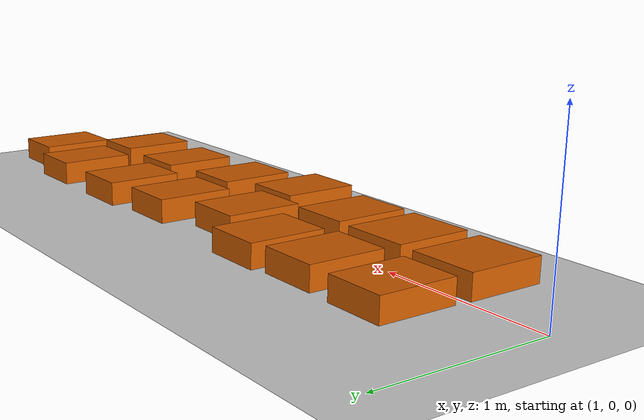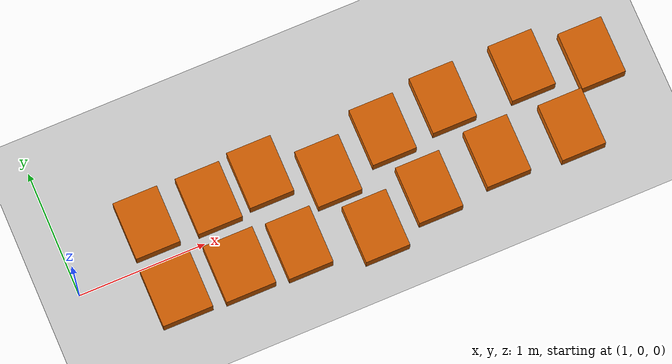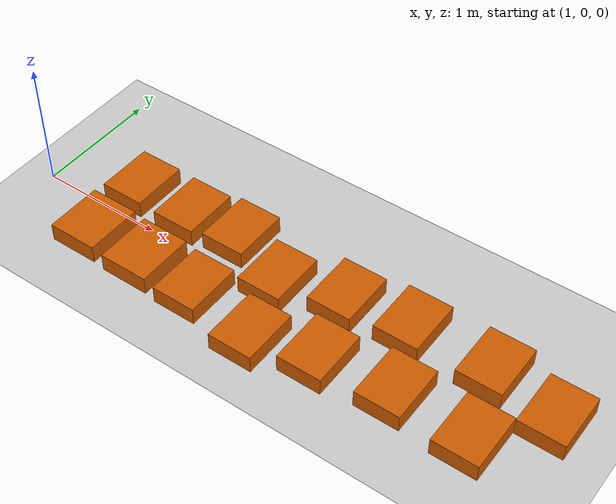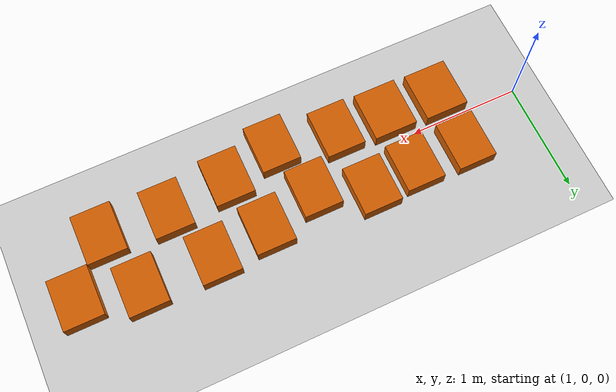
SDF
<sdf version="1.7">
 <world name="default">
  <model name="ground_plane">
   <static>1</static>
   <link name="link">
    <collision name="collision">
     <geometry><plane><normal>0 0 1</normal><size>100 100</size></plane></geometry>
     <surface><friction><ode><mu>100</mu><mu2>50</mu2></ode></friction></surface>
    </collision>
    <visual name="visual">
     <cast_shadows>0</cast_shadows>
     <geometry><plane><normal>0 0 1</normal><size>100 100</size></plane></geometry>
     <material>
      <script><uri>file://media/materials/scripts/gazebo.material</uri><name>Gazebo/Grey</name></script>
     </material>
    </visual>
   </link>
  </model>
  <model name="unit_box_clone">
   <link name="link">
    <inertial>
     <mass>1</mass>
     <inertia>
      <ixx>0.166667</ixx>
      <ixy>0</ixy>
      <ixz>0</ixz>
      <iyy>0.166667</iyy>
      <iyz>0</iyz>
      <izz>0.166667</izz>
     </inertia>
    </inertial>
    <visual name="visual">
     <geometry><box><size>0.394525 0.456132 0.142491</size></box></geometry>
     <material>
      <script><name>Gazebo/Grey</name><uri>file://media/materials/scripts/gazebo.material</uri></script>
      <shader type="pixel"><normal_map>__default__</normal_map></shader>
      <ambient>0.808 0.361 0 1</ambient>
      <diffuse>0.808 0.361 0 1</diffuse>
      <specular>0.808 0.361 0 1</specular>
      <emissive>0.808 0.361 0 1</emissive>
     </material>
    </visual>
    <collision name="collision">
     <geometry><box><size>0.394525 0.456132 0.142491</size></box></geometry>
     <surface>
      <friction>
       <ode><mu>1</mu><mu2>1</mu2><fdir1>0 0 0</fdir1><slip1>0</slip1><slip2>0</slip2></ode>
       <torsional>
        <coefficient>1</coefficient>
        <patch_radius>0</patch_radius>
        <surface_radius>0</surface_radius>
        <use_patch_radius>1</use_patch_radius>
        <ode><slip>0</slip></ode>
       </torsional>
      </friction>
      <bounce><restitution_coefficient>0</restitution_coefficient><threshold>1e+06</threshold></bounce>
      <contact>
       <collide_without_contact>0</collide_without_contact>
       <collide_without_contact_bitmask>1</collide_without_contact_bitmask>
       <collide_bitmask>1</collide_bitmask>
       <ode>
        <soft_cfm>0</soft_cfm>
        <soft_erp>0.2</soft_erp>
        <kp>1e+13</kp>
        <kd>1</kd>
        <max_vel>0.01</max_vel>
        <min_depth>0</min_depth>
       </ode>
       <bullet>
        <split_impulse>1</split_impulse>
        <split_impulse_penetration_threshold>-0.01</split_impulse_penetration_threshold>
        <soft_cfm>0</soft_cfm>
        <soft_erp>0.2</soft_erp>
        <kp>1e+13</kp>
        <kd>1</kd>
       </bullet>
      </contact>
     </surface>
    </collision>
   </link>
   <static>0</static>
   <pose>1.67126 -0.254686 0.071246 0 0 -4e-06</pose>
  </model>
  <model name="unit_box_clone_clone">
   <link name="link">
    <inertial>
     <mass>1</mass>
     <inertia>
      <ixx>0.166667</ixx>
      <ixy>0</ixy>
      <ixz>0</ixz>
      <iyy>0.166667</iyy>
      <iyz>0</iyz>
      <izz>0.166667</izz>
     </inertia>
    </inertial>
    <visual name="visual">
     <geometry><box><size>0.351248 0.456132 0.139463</size></box></geometry>
     <material>
      <script><name>Gazebo/Grey</name><uri>file://media/materials/scripts/gazebo.material</uri></script>
      <shader type="pixel"><normal_map>__default__</normal_map></shader>
      <ambient>0.808 0.361 0 1</ambient>
      <diffuse>0.808 0.361 0 1</diffuse>
      <specular>0.808 0.361 0 1</specular>
      <emissive>0.808 0.361 0 1</emissive>
     </material>
    </visual>
    <collision name="collision">
     <geometry><box><size>0.351248 0.456132 0.139463</size></box></geometry>
     <surface>
      <friction>
       <ode><mu>1</mu><mu2>1</mu2><fdir1>0 0 0</fdir1><slip1>0</slip1><slip2>0</slip2></ode>
       <torsional>
        <coefficient>1</coefficient>
        <patch_radius>0</patch_radius>
        <surface_radius>0</surface_radius>
        <use_patch_radius>1</use_patch_radius>
        <ode><slip>0</slip></ode>
       </torsional>
      </friction>
      <bounce><restitution_coefficient>0</restitution_coefficient><threshold>1e+06</threshold></bounce>
      <contact>
       <collide_without_contact>0</collide_without_contact>
       <collide_without_contact_bitmask>1</collide_without_contact_bitmask>
       <collide_bitmask>1</collide_bitmask>
       <ode>
        <soft_cfm>0</soft_cfm>
        <soft_erp>0.2</soft_erp>
        <kp>1e+13</kp>
        <kd>1</kd>
        <max_vel>0.01</max_vel>
        <min_depth>0</min_depth>
       </ode>
       <bullet>
        <split_impulse>1</split_impulse>
        <split_impulse_penetration_threshold>-0.01</split_impulse_penetration_threshold>
        <soft_cfm>0</soft_cfm>
        <soft_erp>0.2</soft_erp>
        <kp>1e+13</kp>
        <kd>1</kd>
       </bullet>
      </contact>
     </surface>
    </collision>
   </link>
   <static>0</static>
   <pose>1.65893 0.289361 0.069732 0 0 -4e-06</pose>
  </model>
  <model name="unit_box_clone_clone_0">
   <link name="link">
    <inertial>
     <mass>1</mass>
     <inertia>
      <ixx>0.166667</ixx>
      <ixy>0</ixy>
      <ixz>0</ixz>
      <iyy>0.166667</iyy>
      <iyz>0</iyz>
      <izz>0.166667</izz>
     </inertia>
    </inertial>
    <visual name="visual">
     <geometry><box><size>0.394525 0.456132 0.142491</size></box></geometry>
     <material>
      <script><name>Gazebo/Grey</name><uri>file://media/materials/scripts/gazebo.material</uri></script>
      <shader type="pixel"><normal_map>__default__</normal_map></shader>
      <ambient>0.808 0.361 0 1</ambient>
      <diffuse>0.808 0.361 0 1</diffuse>
      <specular>0.808 0.361 0 1</specular>
      <emissive>0.808 0.361 0 1</emissive>
     </material>
    </visual>
    <collision name="collision">
     <geometry><box><size>0.394525 0.456132 0.142491</size></box></geometry>
     <surface>
      <friction>
       <ode><mu>1</mu><mu2>1</mu2><fdir1>0 0 0</fdir1><slip1>0</slip1><slip2>0</slip2></ode>
       <torsional>
        <coefficient>1</coefficient>
        <patch_radius>0</patch_radius>
        <surface_radius>0</surface_radius>
        <use_patch_radius>1</use_patch_radius>
        <ode><slip>0</slip></ode>
       </torsional>
      </friction>
      <bounce><restitution_coefficient>0</restitution_coefficient><threshold>1e+06</threshold></bounce>
      <contact>
       <collide_without_contact>0</collide_without_contact>
       <collide_without_contact_bitmask>1</collide_without_contact_bitmask>
       <collide_bitmask>1</collide_bitmask>
       <ode>
        <soft_cfm>0</soft_cfm>
        <soft_erp>0.2</soft_erp>
        <kp>1e+13</kp>
        <kd>1</kd>
        <max_vel>0.01</max_vel>
        <min_depth>0</min_depth>
       </ode>
       <bullet>
        <split_impulse>1</split_impulse>
        <split_impulse_penetration_threshold>-0.01</split_impulse_penetration_threshold>
        <soft_cfm>0</soft_cfm>
        <soft_erp>0.2</soft_erp>
        <kp>1e+13</kp>
        <kd>1</kd>
       </bullet>
      </contact>
     </surface>
    </collision>
   </link>
   <static>0</static>
   <pose>2.1666 -0.269272 0.071245 0 0 -4e-06</pose>
  </model>
  <model name="unit_box_clone_clone_clone">
   <link name="link">
    <inertial>
     <mass>1</mass>
     <inertia>
      <ixx>0.166667</ixx>
      <ixy>0</ixy>
      <ixz>0</ixz>
      <iyy>0.166667</iyy>
      <iyz>0</iyz>
      <izz>0.166667</izz>
     </inertia>
    </inertial>
    <visual name="visual">
     <geometry><box><size>0.351248 0.456132 0.139463</size></box></geometry>
     <material>
      <script><name>Gazebo/Grey</name><uri>file://media/materials/scripts/gazebo.material</uri></script>
      <shader type="pixel"><normal_map>__default__</normal_map></shader>
      <ambient>0.808 0.361 0 1</ambient>
      <diffuse>0.808 0.361 0 1</diffuse>
      <specular>0.808 0.361 0 1</specular>
      <emissive>0.808 0.361 0 1</emissive>
     </material>
    </visual>
    <collision name="collision">
     <geometry><box><size>0.351248 0.456132 0.139463</size></box></geometry>
     <surface>
      <friction>
       <ode><mu>1</mu><mu2>1</mu2><fdir1>0 0 0</fdir1><slip1>0</slip1><slip2>0</slip2></ode>
       <torsional>
        <coefficient>1</coefficient>
        <patch_radius>0</patch_radius>
        <surface_radius>0</surface_radius>
        <use_patch_radius>1</use_patch_radius>
        <ode><slip>0</slip></ode>
       </torsional>
      </friction>
      <bounce><restitution_coefficient>0</restitution_coefficient><threshold>1e+06</threshold></bounce>
      <contact>
       <collide_without_contact>0</collide_without_contact>
       <collide_without_contact_bitmask>1</collide_without_contact_bitmask>
       <collide_bitmask>1</collide_bitmask>
       <ode>
        <soft_cfm>0</soft_cfm>
        <soft_erp>0.2</soft_erp>
        <kp>1e+13</kp>
        <kd>1</kd>
        <max_vel>0.01</max_vel>
        <min_depth>0</min_depth>
       </ode>
       <bullet>
        <split_impulse>1</split_impulse>
        <split_impulse_penetration_threshold>-0.01</split_impulse_penetration_threshold>
        <soft_cfm>0</soft_cfm>
        <soft_erp>0.2</soft_erp>
        <kp>1e+13</kp>
        <kd>1</kd>
       </bullet>
      </contact>
     </surface>
    </collision>
   </link>
   <static>0</static>
   <pose>2.15225 0.282957 0.069731 0 0 -4e-06</pose>
  </model>
  <model name="unit_box_clone_clone_clone_clone">
   <link name="link">
    <inertial>
     <mass>1</mass>
     <inertia>
      <ixx>0.166667</ixx>
      <ixy>0</ixy>
      <ixz>0</ixz>
      <iyy>0.166667</iyy>
      <iyz>0</iyz>
      <izz>0.166667</izz>
     </inertia>
    </inertial>
    <visual name="visual">
     <geometry><box><size>0.351248 0.456132 0.139463</size></box></geometry>
     <material>
      <script><name>Gazebo/Grey</name><uri>file://media/materials/scripts/gazebo.material</uri></script>
      <shader type="pixel"><normal_map>__default__</normal_map></shader>
      <ambient>0.808 0.361 0 1</ambient>
      <diffuse>0.808 0.361 0 1</diffuse>
      <specular>0.808 0.361 0 1</specular>
      <emissive>0.808 0.361 0 1</emissive>
     </material>
    </visual>
    <collision name="collision">
     <geometry><box><size>0.351248 0.456132 0.139463</size></box></geometry>
     <surface>
      <friction>
       <ode><mu>1</mu><mu2>1</mu2><fdir1>0 0 0</fdir1><slip1>0</slip1><slip2>0</slip2></ode>
       <torsional>
        <coefficient>1</coefficient>
        <patch_radius>0</patch_radius>
        <surface_radius>0</surface_radius>
        <use_patch_radius>1</use_patch_radius>
        <ode><slip>0</slip></ode>
       </torsional>
      </friction>
      <bounce><restitution_coefficient>0</restitution_coefficient><threshold>1e+06</threshold></bounce>
      <contact>
       <collide_without_contact>0</collide_without_contact>
       <collide_without_contact_bitmask>1</collide_without_contact_bitmask>
       <collide_bitmask>1</collide_bitmask>
       <ode>
        <soft_cfm>0</soft_cfm>
        <soft_erp>0.2</soft_erp>
        <kp>1e+13</kp>
        <kd>1</kd>
        <max_vel>0.01</max_vel>
        <min_depth>0</min_depth>
       </ode>
       <bullet>
        <split_impulse>1</split_impulse>
        <split_impulse_penetration_threshold>-0.01</split_impulse_penetration_threshold>
        <soft_cfm>0</soft_cfm>
        <soft_erp>0.2</soft_erp>
        <kp>1e+13</kp>
        <kd>1</kd>
       </bullet>
      </contact>
     </surface>
    </collision>
   </link>
   <static>0</static>
   <pose>2.57815 0.316885 0.069731 0 0 -4e-06</pose>
  </model>
  <model name="unit_box_clone_clone_clone_clone_0">
   <link name="link">
    <inertial>
     <mass>1</mass>
     <inertia>
      <ixx>0.166667</ixx>
      <ixy>0</ixy>
      <ixz>0</ixz>
      <iyy>0.166667</iyy>
      <iyz>0</iyz>
      <izz>0.166667</izz>
     </inertia>
    </inertial>
    <visual name="visual">
     <geometry><box><size>0.351248 0.456132 0.139463</size></box></geometry>
     <material>
      <script><name>Gazebo/Grey</name><uri>file://media/materials/scripts/gazebo.material</uri></script>
      <shader type="pixel"><normal_map>__default__</normal_map></shader>
      <ambient>0.808 0.361 0 1</ambient>
      <diffuse>0.808 0.361 0 1</diffuse>
      <specular>0.808 0.361 0 1</specular>
      <emissive>0.808 0.361 0 1</emissive>
     </material>
    </visual>
    <collision name="collision">
     <geometry><box><size>0.351248 0.456132 0.139463</size></box></geometry>
     <surface>
      <friction>
       <ode><mu>1</mu><mu2>1</mu2><fdir1>0 0 0</fdir1><slip1>0</slip1><slip2>0</slip2></ode>
       <torsional>
        <coefficient>1</coefficient>
        <patch_radius>0</patch_radius>
        <surface_radius>0</surface_radius>
        <use_patch_radius>1</use_patch_radius>
        <ode><slip>0</slip></ode>
       </torsional>
      </friction>
      <bounce><restitution_coefficient>0</restitution_coefficient><threshold>1e+06</threshold></bounce>
      <contact>
       <collide_without_contact>0</collide_without_contact>
       <collide_without_contact_bitmask>1</collide_without_contact_bitmask>
       <collide_bitmask>1</collide_bitmask>
       <ode>
        <soft_cfm>0</soft_cfm>
        <soft_erp>0.2</soft_erp>
        <kp>1e+13</kp>
        <kd>1</kd>
        <max_vel>0.01</max_vel>
        <min_depth>0</min_depth>
       </ode>
       <bullet>
        <split_impulse>1</split_impulse>
        <split_impulse_penetration_threshold>-0.01</split_impulse_penetration_threshold>
        <soft_cfm>0</soft_cfm>
        <soft_erp>0.2</soft_erp>
        <kp>1e+13</kp>
        <kd>1</kd>
       </bullet>
      </contact>
     </surface>
    </collision>
   </link>
   <static>0</static>
   <pose>2.63627 -0.288382 0.069731 0 0 -4e-06</pose>
  </model>
  <model name="unit_box_clone_clone_clone_clone_0_clone">
   <link name="link">
    <inertial>
     <mass>1</mass>
     <inertia>
      <ixx>0.166667</ixx>
      <ixy>0</ixy>
      <ixz>0</ixz>
      <iyy>0.166667</iyy>
      <iyz>0</iyz>
      <izz>0.166667</izz>
     </inertia>
    </inertial>
    <visual name="visual">
     <geometry><box><size>0.351248 0.456132 0.139463</size></box></geometry>
     <material>
      <script><name>Gazebo/Grey</name><uri>file://media/materials/scripts/gazebo.material</uri></script>
      <shader type="pixel"><normal_map>__default__</normal_map></shader>
      <ambient>0.808 0.361 0 1</ambient>
      <diffuse>0.808 0.361 0 1</diffuse>
      <specular>0.808 0.361 0 1</specular>
      <emissive>0.808 0.361 0 1</emissive>
     </material>
    </visual>
    <collision name="collision">
     <geometry><box><size>0.351248 0.456132 0.139463</size></box></geometry>
     <surface>
      <friction>
       <ode><mu>1</mu><mu2>1</mu2><fdir1>0 0 0</fdir1><slip1>0</slip1><slip2>0</slip2></ode>
       <torsional>
        <coefficient>1</coefficient>
        <patch_radius>0</patch_radius>
        <surface_radius>0</surface_radius>
        <use_patch_radius>1</use_patch_radius>
        <ode><slip>0</slip></ode>
       </torsional>
      </friction>
      <bounce><restitution_coefficient>0</restitution_coefficient><threshold>1e+06</threshold></bounce>
      <contact>
       <collide_without_contact>0</collide_without_contact>
       <collide_without_contact_bitmask>1</collide_without_contact_bitmask>
       <collide_bitmask>1</collide_bitmask>
       <ode>
        <soft_cfm>0</soft_cfm>
        <soft_erp>0.2</soft_erp>
        <kp>1e+13</kp>
        <kd>1</kd>
        <max_vel>0.01</max_vel>
        <min_depth>0</min_depth>
       </ode>
       <bullet>
        <split_impulse>1</split_impulse>
        <split_impulse_penetration_threshold>-0.01</split_impulse_penetration_threshold>
        <soft_cfm>0</soft_cfm>
        <soft_erp>0.2</soft_erp>
        <kp>1e+13</kp>
        <kd>1</kd>
       </bullet>
      </contact>
     </surface>
    </collision>
   </link>
   <static>0</static>
   <pose>3.04491 0.129041 0.069731 0 0 -4e-06</pose>
  </model>
  <model name="unit_box_clone_clone_clone_clone_0_clone_0">
   <link name="link">
    <inertial>
     <mass>1</mass>
     <inertia>
      <ixx>0.166667</ixx>
      <ixy>0</ixy>
      <ixz>0</ixz>
      <iyy>0.166667</iyy>
      <iyz>0</iyz>
      <izz>0.166667</izz>
     </inertia>
    </inertial>
    <visual name="visual">
     <geometry><box><size>0.351248 0.456132 0.139463</size></box></geometry>
     <material>
      <script><name>Gazebo/Grey</name><uri>file://media/materials/scripts/gazebo.material</uri></script>
      <shader type="pixel"><normal_map>__default__</normal_map></shader>
      <ambient>0.808 0.361 0 1</ambient>
      <diffuse>0.808 0.361 0 1</diffuse>
      <specular>0.808 0.361 0 1</specular>
      <emissive>0.808 0.361 0 1</emissive>
     </material>
    </visual>
    <collision name="collision">
     <geometry><box><size>0.351248 0.456132 0.139463</size></box></geometry>
     <surface>
      <friction>
       <ode><mu>1</mu><mu2>1</mu2><fdir1>0 0 0</fdir1><slip1>0</slip1><slip2>0</slip2></ode>
       <torsional>
        <coefficient>1</coefficient>
        <patch_radius>0</patch_radius>
        <surface_radius>0</surface_radius>
        <use_patch_radius>1</use_patch_radius>
        <ode><slip>0</slip></ode>
       </torsional>
      </friction>
      <bounce><restitution_coefficient>0</restitution_coefficient><threshold>1e+06</threshold></bounce>
      <contact>
       <collide_without_contact>0</collide_without_contact>
       <collide_without_contact_bitmask>1</collide_without_contact_bitmask>
       <collide_bitmask>1</collide_bitmask>
       <ode>
        <soft_cfm>0</soft_cfm>
        <soft_erp>0.2</soft_erp>
        <kp>1e+13</kp>
        <kd>1</kd>
        <max_vel>0.01</max_vel>
        <min_depth>0</min_depth>
       </ode>
       <bullet>
        <split_impulse>1</split_impulse>
        <split_impulse_penetration_threshold>-0.01</split_impulse_penetration_threshold>
        <soft_cfm>0</soft_cfm>
        <soft_erp>0.2</soft_erp>
        <kp>1e+13</kp>
        <kd>1</kd>
       </bullet>
      </contact>
     </surface>
    </collision>
   </link>
   <static>0</static>
   <pose>3.20525 -0.39198 0.069731 0 0 -4e-06</pose>
  </model>
  <model name="unit_box_clone_clone_clone_clone_0_clone_0_clone">
   <link name="link">
    <inertial>
     <mass>1</mass>
     <inertia>
      <ixx>0.166667</ixx>
      <ixy>0</ixy>
      <ixz>0</ixz>
      <iyy>0.166667</iyy>
      <iyz>0</iyz>
      <izz>0.166667</izz>
     </inertia>
    </inertial>
    <visual name="visual">
     <geometry><box><size>0.351248 0.456132 0.139463</size></box></geometry>
     <material>
      <script><name>Gazebo/Grey</name><uri>file://media/materials/scripts/gazebo.material</uri></script>
      <shader type="pixel"><normal_map>__default__</normal_map></shader>
      <ambient>0.808 0.361 0 1</ambient>
      <diffuse>0.808 0.361 0 1</diffuse>
      <specular>0.808 0.361 0 1</specular>
      <emissive>0.808 0.361 0 1</emissive>
     </material>
    </visual>
    <collision name="collision">
     <geometry><box><size>0.351248 0.456132 0.139463</size></box></geometry>
     <surface>
      <friction>
       <ode><mu>1</mu><mu2>1</mu2><fdir1>0 0 0</fdir1><slip1>0</slip1><slip2>0</slip2></ode>
       <torsional>
        <coefficient>1</coefficient>
        <patch_radius>0</patch_radius>
        <surface_radius>0</surface_radius>
        <use_patch_radius>1</use_patch_radius>
        <ode><slip>0</slip></ode>
       </torsional>
      </friction>
      <bounce><restitution_coefficient>0</restitution_coefficient><threshold>1e+06</threshold></bounce>
      <contact>
       <collide_without_contact>0</collide_without_contact>
       <collide_without_contact_bitmask>1</collide_without_contact_bitmask>
       <collide_bitmask>1</collide_bitmask>
       <ode>
        <soft_cfm>0</soft_cfm>
        <soft_erp>0.2</soft_erp>
        <kp>1e+13</kp>
        <kd>1</kd>
        <max_vel>0.01</max_vel>
        <min_depth>0</min_depth>
       </ode>
       <bullet>
        <split_impulse>1</split_impulse>
        <split_impulse_penetration_threshold>-0.01</split_impulse_penetration_threshold>
        <soft_cfm>0</soft_cfm>
        <soft_erp>0.2</soft_erp>
        <kp>1e+13</kp>
        <kd>1</kd>
       </bullet>
      </contact>
     </surface>
    </collision>
   </link>
   <static>0</static>
   <pose>3.53896 0.263735 0.069731 0 0 -4e-06</pose>
  </model>
  <model name="unit_box_clone_clone_clone_clone_0_clone_0_clone_0">
   <link name="link">
    <inertial>
     <mass>1</mass>
     <inertia>
      <ixx>0.166667</ixx>
      <ixy>0</ixy>
      <ixz>0</ixz>
      <iyy>0.166667</iyy>
      <iyz>0</iyz>
      <izz>0.166667</izz>
     </inertia>
    </inertial>
    <visual name="visual">
     <geometry><box><size>0.351248 0.456132 0.139463</size></box></geometry>
     <material>
      <script><name>Gazebo/Grey</name><uri>file://media/materials/scripts/gazebo.material</uri></script>
      <shader type="pixel"><normal_map>__default__</normal_map></shader>
      <ambient>0.808 0.361 0 1</ambient>
      <diffuse>0.808 0.361 0 1</diffuse>
      <specular>0.808 0.361 0 1</specular>
      <emissive>0.808 0.361 0 1</emissive>
     </material>
    </visual>
    <collision name="collision">
     <geometry><box><size>0.351248 0.456132 0.139463</size></box></geometry>
     <surface>
      <friction>
       <ode><mu>1</mu><mu2>1</mu2><fdir1>0 0 0</fdir1><slip1>0</slip1><slip2>0</slip2></ode>
       <torsional>
        <coefficient>1</coefficient>
        <patch_radius>0</patch_radius>
        <surface_radius>0</surface_radius>
        <use_patch_radius>1</use_patch_radius>
        <ode><slip>0</slip></ode>
       </torsional>
      </friction>
      <bounce><restitution_coefficient>0</restitution_coefficient><threshold>1e+06</threshold></bounce>
      <contact>
       <collide_without_contact>0</collide_without_contact>
       <collide_without_contact_bitmask>1</collide_without_contact_bitmask>
       <collide_bitmask>1</collide_bitmask>
       <ode>
        <soft_cfm>0</soft_cfm>
        <soft_erp>0.2</soft_erp>
        <kp>1e+13</kp>
        <kd>1</kd>
        <max_vel>0.01</max_vel>
        <min_depth>0</min_depth>
       </ode>
       <bullet>
        <split_impulse>1</split_impulse>
        <split_impulse_penetration_threshold>-0.01</split_impulse_penetration_threshold>
        <soft_cfm>0</soft_cfm>
        <soft_erp>0.2</soft_erp>
        <kp>1e+13</kp>
        <kd>1</kd>
       </bullet>
      </contact>
     </surface>
    </collision>
   </link>
   <static>0</static>
   <pose>3.68207 -0.273458 0.069731 0 0 -4e-06</pose>
  </model>
  <model name="unit_box_clone_clone_clone_clone_0_clone_0_clone_1">
   <link name="link">
    <inertial>
     <mass>1</mass>
     <inertia>
      <ixx>0.166667</ixx>
      <ixy>0</ixy>
      <ixz>0</ixz>
      <iyy>0.166667</iyy>
      <iyz>0</iyz>
      <izz>0.166667</izz>
     </inertia>
    </inertial>
    <visual name="visual">
     <geometry><box><size>0.351248 0.456132 0.139463</size></box></geometry>
     <material>
      <script><name>Gazebo/Grey</name><uri>file://media/materials/scripts/gazebo.material</uri></script>
      <shader type="pixel"><normal_map>__default__</normal_map></shader>
      <ambient>0.808 0.361 0 1</ambient>
      <diffuse>0.808 0.361 0 1</diffuse>
      <specular>0.808 0.361 0 1</specular>
      <emissive>0.808 0.361 0 1</emissive>
     </material>
    </visual>
    <collision name="collision">
     <geometry><box><size>0.351248 0.456132 0.139463</size></box></geometry>
     <surface>
      <friction>
       <ode><mu>1</mu><mu2>1</mu2><fdir1>0 0 0</fdir1><slip1>0</slip1><slip2>0</slip2></ode>
       <torsional>
        <coefficient>1</coefficient>
        <patch_radius>0</patch_radius>
        <surface_radius>0</surface_radius>
        <use_patch_radius>1</use_patch_radius>
        <ode><slip>0</slip></ode>
       </torsional>
      </friction>
      <bounce><restitution_coefficient>0</restitution_coefficient><threshold>1e+06</threshold></bounce>
      <contact>
       <collide_without_contact>0</collide_without_contact>
       <collide_without_contact_bitmask>1</collide_without_contact_bitmask>
       <collide_bitmask>1</collide_bitmask>
       <ode>
        <soft_cfm>0</soft_cfm>
        <soft_erp>0.2</soft_erp>
        <kp>1e+13</kp>
        <kd>1</kd>
        <max_vel>0.01</max_vel>
        <min_depth>0</min_depth>
       </ode>
       <bullet>
        <split_impulse>1</split_impulse>
        <split_impulse_penetration_threshold>-0.01</split_impulse_penetration_threshold>
        <soft_cfm>0</soft_cfm>
        <soft_erp>0.2</soft_erp>
        <kp>1e+13</kp>
        <kd>1</kd>
       </bullet>
      </contact>
     </surface>
    </collision>
   </link>
   <static>0</static>
   <pose>4.04449 0.313612 0.069731 0 0 -4e-06</pose>
  </model>
  <model name="unit_box_clone_clone_clone_clone_0_clone_0_clone_2">
   <link name="link">
    <inertial>
     <mass>1</mass>
     <inertia>
      <ixx>0.166667</ixx>
      <ixy>0</ixy>
      <ixz>0</ixz>
      <iyy>0.166667</iyy>
      <iyz>0</iyz>
      <izz>0.166667</izz>
     </inertia>
    </inertial>
    <visual name="visual">
     <geometry><box><size>0.351248 0.456132 0.139463</size></box></geometry>
     <material>
      <script><name>Gazebo/Grey</name><uri>file://media/materials/scripts/gazebo.material</uri></script>
      <shader type="pixel"><normal_map>__default__</normal_map></shader>
      <ambient>0.808 0.361 0 1</ambient>
      <diffuse>0.808 0.361 0 1</diffuse>
      <specular>0.808 0.361 0 1</specular>
      <emissive>0.808 0.361 0 1</emissive>
     </material>
    </visual>
    <collision name="collision">
     <geometry><box><size>0.351248 0.456132 0.139463</size></box></geometry>
     <surface>
      <friction>
       <ode><mu>1</mu><mu2>1</mu2><fdir1>0 0 0</fdir1><slip1>0</slip1><slip2>0</slip2></ode>
       <torsional>
        <coefficient>1</coefficient>
        <patch_radius>0</patch_radius>
        <surface_radius>0</surface_radius>
        <use_patch_radius>1</use_patch_radius>
        <ode><slip>0</slip></ode>
       </torsional>
      </friction>
      <bounce><restitution_coefficient>0</restitution_coefficient><threshold>1e+06</threshold></bounce>
      <contact>
       <collide_without_contact>0</collide_without_contact>
       <collide_without_contact_bitmask>1</collide_without_contact_bitmask>
       <collide_bitmask>1</collide_bitmask>
       <ode>
        <soft_cfm>0</soft_cfm>
        <soft_erp>0.2</soft_erp>
        <kp>1e+13</kp>
        <kd>1</kd>
        <max_vel>0.01</max_vel>
        <min_depth>0</min_depth>
       </ode>
       <bullet>
        <split_impulse>1</split_impulse>
        <split_impulse_penetration_threshold>-0.01</split_impulse_penetration_threshold>
        <soft_cfm>0</soft_cfm>
        <soft_erp>0.2</soft_erp>
        <kp>1e+13</kp>
        <kd>1</kd>
       </bullet>
      </contact>
     </surface>
    </collision>
   </link>
   <static>0</static>
   <pose>4.25241 -0.218231 0.069731 0 0 -4e-06</pose>
  </model>
  <model name="unit_box_clone_clone_clone_clone_0_clone_0_clone_2_clone">
   <link name="link">
    <inertial>
     <mass>1</mass>
     <inertia>
      <ixx>0.166667</ixx>
      <ixy>0</ixy>
      <ixz>0</ixz>
      <iyy>0.166667</iyy>
      <iyz>0</iyz>
      <izz>0.166667</izz>
     </inertia>
    </inertial>
    <visual name="visual">
     <geometry><box><size>0.351248 0.456132 0.139463</size></box></geometry>
     <material>
      <script><name>Gazebo/Grey</name><uri>file://media/materials/scripts/gazebo.material</uri></script>
      <shader type="pixel"><normal_map>__default__</normal_map></shader>
      <ambient>0.808 0.361 0 1</ambient>
      <diffuse>0.808 0.361 0 1</diffuse>
      <specular>0.808 0.361 0 1</specular>
      <emissive>0.808 0.361 0 1</emissive>
     </material>
    </visual>
    <collision name="collision">
     <geometry><box><size>0.351248 0.456132 0.139463</size></box></geometry>
     <surface>
      <friction>
       <ode><mu>1</mu><mu2>1</mu2><fdir1>0 0 0</fdir1><slip1>0</slip1><slip2>0</slip2></ode>
       <torsional>
        <coefficient>1</coefficient>
        <patch_radius>0</patch_radius>
        <surface_radius>0</surface_radius>
        <use_patch_radius>1</use_patch_radius>
        <ode><slip>0</slip></ode>
       </torsional>
      </friction>
      <bounce><restitution_coefficient>0</restitution_coefficient><threshold>1e+06</threshold></bounce>
      <contact>
       <collide_without_contact>0</collide_without_contact>
       <collide_without_contact_bitmask>1</collide_without_contact_bitmask>
       <collide_bitmask>1</collide_bitmask>
       <ode>
        <soft_cfm>0</soft_cfm>
        <soft_erp>0.2</soft_erp>
        <kp>1e+13</kp>
        <kd>1</kd>
        <max_vel>0.01</max_vel>
        <min_depth>0</min_depth>
       </ode>
       <bullet>
        <split_impulse>1</split_impulse>
        <split_impulse_penetration_threshold>-0.01</split_impulse_penetration_threshold>
        <soft_cfm>0</soft_cfm>
        <soft_erp>0.2</soft_erp>
        <kp>1e+13</kp>
        <kd>1</kd>
       </bullet>
      </contact>
     </surface>
    </collision>
   </link>
   <static>0</static>
   <pose>4.68151 0.311904 0.069731 0 0 -4e-06</pose>
  </model>
  <model name="unit_box_clone_clone_clone_clone_0_clone_0_clone_2_clone_clone">
   <link name="link">
    <inertial>
     <mass>1</mass>
     <inertia>
      <ixx>0.166667</ixx>
      <ixy>0</ixy>
      <ixz>0</ixz>
      <iyy>0.166667</iyy>
      <iyz>0</iyz>
      <izz>0.166667</izz>
     </inertia>
    </inertial>
    <visual name="visual">
     <geometry><box><size>0.351248 0.456132 0.139463</size></box></geometry>
     <material>
      <script><name>Gazebo/Grey</name><uri>file://media/materials/scripts/gazebo.material</uri></script>
      <shader type="pixel"><normal_map>__default__</normal_map></shader>
      <ambient>0.808 0.361 0 1</ambient>
      <diffuse>0.808 0.361 0 1</diffuse>
      <specular>0.808 0.361 0 1</specular>
      <emissive>0.808 0.361 0 1</emissive>
     </material>
    </visual>
    <collision name="collision">
     <geometry><box><size>0.351248 0.456132 0.139463</size></box></geometry>
     <surface>
      <friction>
       <ode><mu>1</mu><mu2>1</mu2><fdir1>0 0 0</fdir1><slip1>0</slip1><slip2>0</slip2></ode>
       <torsional>
        <coefficient>1</coefficient>
        <patch_radius>0</patch_radius>
        <surface_radius>0</surface_radius>
        <use_patch_radius>1</use_patch_radius>
        <ode><slip>0</slip></ode>
       </torsional>
      </friction>
      <bounce><restitution_coefficient>0</restitution_coefficient><threshold>1e+06</threshold></bounce>
      <contact>
       <collide_without_contact>0</collide_without_contact>
       <collide_without_contact_bitmask>1</collide_without_contact_bitmask>
       <collide_bitmask>1</collide_bitmask>
       <ode>
        <soft_cfm>0</soft_cfm>
        <soft_erp>0.2</soft_erp>
        <kp>1e+13</kp>
        <kd>1</kd>
        <max_vel>0.01</max_vel>
        <min_depth>0</min_depth>
       </ode>
       <bullet>
        <split_impulse>1</split_impulse>
        <split_impulse_penetration_threshold>-0.01</split_impulse_penetration_threshold>
        <soft_cfm>0</soft_cfm>
        <soft_erp>0.2</soft_erp>
        <kp>1e+13</kp>
        <kd>1</kd>
       </bullet>
      </contact>
     </surface>
    </collision>
   </link>
   <static>0</static>
   <pose>4.84252 -0.248158 0.069731 0 0 -4e-06</pose>
  </model>
  <model name="unit_box_clone_clone_clone_clone_0_clone_0_clone_2_clone_clone">
   <link name="link">
    <inertial>
     <mass>1</mass>
     <inertia>
      <ixx>0.166667</ixx>
      <ixy>0</ixy>
      <ixz>0</ixz>
      <iyy>0.166667</iyy>
      <iyz>0</iyz>
      <izz>0.166667</izz>
     </inertia>
    </inertial>
    <visual name="visual">
     <geometry><box><size>0.351248 0.456132 0.139463</size></box></geometry>
     <material>
      <script><name>Gazebo/Grey</name><uri>file://media/materials/scripts/gazebo.material</uri></script>
      <shader type="pixel"><normal_map>__default__</normal_map></shader>
      <ambient>0.808 0.361 0 1</ambient>
      <diffuse>0.808 0.361 0 1</diffuse>
      <specular>0.808 0.361 0 1</specular>
      <emissive>0.808 0.361 0 1</emissive>
     </material>
    </visual>
    <collision name="collision">
     <geometry><box><size>0.351248 0.456132 0.139463</size></box></geometry>
     <surface>
      <friction>
       <ode><mu>1</mu><mu2>1</mu2><fdir1>0 0 0</fdir1><slip1>0</slip1><slip2>0</slip2></ode>
       <torsional>
        <coefficient>1</coefficient>
        <patch_radius>0</patch_radius>
        <surface_radius>0</surface_radius>
        <use_patch_radius>1</use_patch_radius>
        <ode><slip>0</slip></ode>
       </torsional>
      </friction>
      <bounce><restitution_coefficient>0</restitution_coefficient><threshold>1e+06</threshold></bounce>
      <contact>
       <collide_without_contact>0</collide_without_contact>
       <collide_without_contact_bitmask>1</collide_without_contact_bitmask>
       <collide_bitmask>1</collide_bitmask>
       <ode>
        <soft_cfm>0</soft_cfm>
        <soft_erp>0.2</soft_erp>
        <kp>1e+13</kp>
        <kd>1</kd>
        <max_vel>0.01</max_vel>
        <min_depth>0</min_depth>
       </ode>
       <bullet>
        <split_impulse>1</split_impulse>
        <split_impulse_penetration_threshold>-0.01</split_impulse_penetration_threshold>
        <soft_cfm>0</soft_cfm>
        <soft_erp>0.2</soft_erp>
        <kp>1e+13</kp>
        <kd>1</kd>
       </bullet>
      </contact>
     </surface>
    </collision>
   </link>
   <static>0</static>
   <pose>4.84252 -0.248158 0.069731 0 0 -4e-06</pose>
  </model>
  <model name="unit_box_clone_clone_clone_clone_0_clone_0_clone_2_clone_clone_clone">
   <link name="link">
    <inertial>
     <mass>1</mass>
     <inertia>
      <ixx>0.166667</ixx>
      <ixy>0</ixy>
      <ixz>0</ixz>
      <iyy>0.166667</iyy>
      <iyz>0</iyz>
      <izz>0.166667</izz>
     </inertia>
    </inertial>
    <visual name="visual">
     <geometry><box><size>0.351248 0.456132 0.139463</size></box></geometry>
     <material>
      <script><name>Gazebo/Grey</name><uri>file://media/materials/scripts/gazebo.material</uri></script>
      <shader type="pixel"><normal_map>__default__</normal_map></shader>
      <ambient>0.808 0.361 0 1</ambient>
      <diffuse>0.808 0.361 0 1</diffuse>
      <specular>0.808 0.361 0 1</specular>
      <emissive>0.808 0.361 0 1</emissive>
     </material>
    </visual>
    <collision name="collision">
     <geometry><box><size>0.351248 0.456132 0.139463</size></box></geometry>
     <surface>
      <friction>
       <ode><mu>1</mu><mu2>1</mu2><fdir1>0 0 0</fdir1><slip1>0</slip1><slip2>0</slip2></ode>
       <torsional>
        <coefficient>1</coefficient>
        <patch_radius>0</patch_radius>
        <surface_radius>0</surface_radius>
        <use_patch_radius>1</use_patch_radius>
        <ode><slip>0</slip></ode>
       </torsional>
      </friction>
      <bounce><restitution_coefficient>0</restitution_coefficient><threshold>1e+06</threshold></bounce>
      <contact>
       <collide_without_contact>0</collide_without_contact>
       <collide_without_contact_bitmask>1</collide_without_contact_bitmask>
       <collide_bitmask>1</collide_bitmask>
       <ode>
        <soft_cfm>0</soft_cfm>
        <soft_erp>0.2</soft_erp>
        <kp>1e+13</kp>
        <kd>1</kd>
        <max_vel>0.01</max_vel>
        <min_depth>0</min_depth>
       </ode>
       <bullet>
        <split_impulse>1</split_impulse>
        <split_impulse_penetration_threshold>-0.01</split_impulse_penetration_threshold>
        <soft_cfm>0</soft_cfm>
        <soft_erp>0.2</soft_erp>
        <kp>1e+13</kp>
        <kd>1</kd>
       </bullet>
      </contact>
     </surface>
    </collision>
   </link>
   <static>0</static>
   <pose>5.19755 0.196357 0.069731 0 0 -4e-06</pose>
  </model>
 </world>
</sdf>
